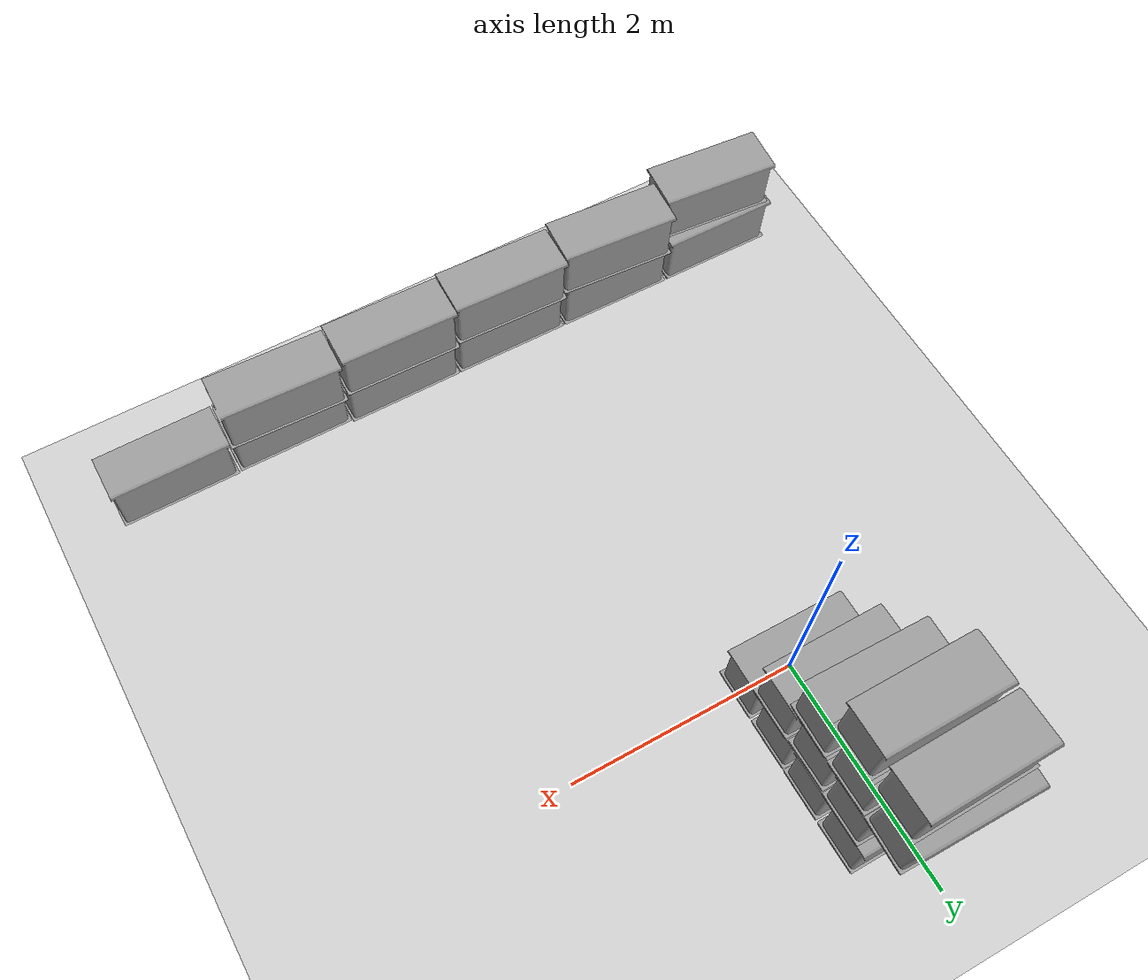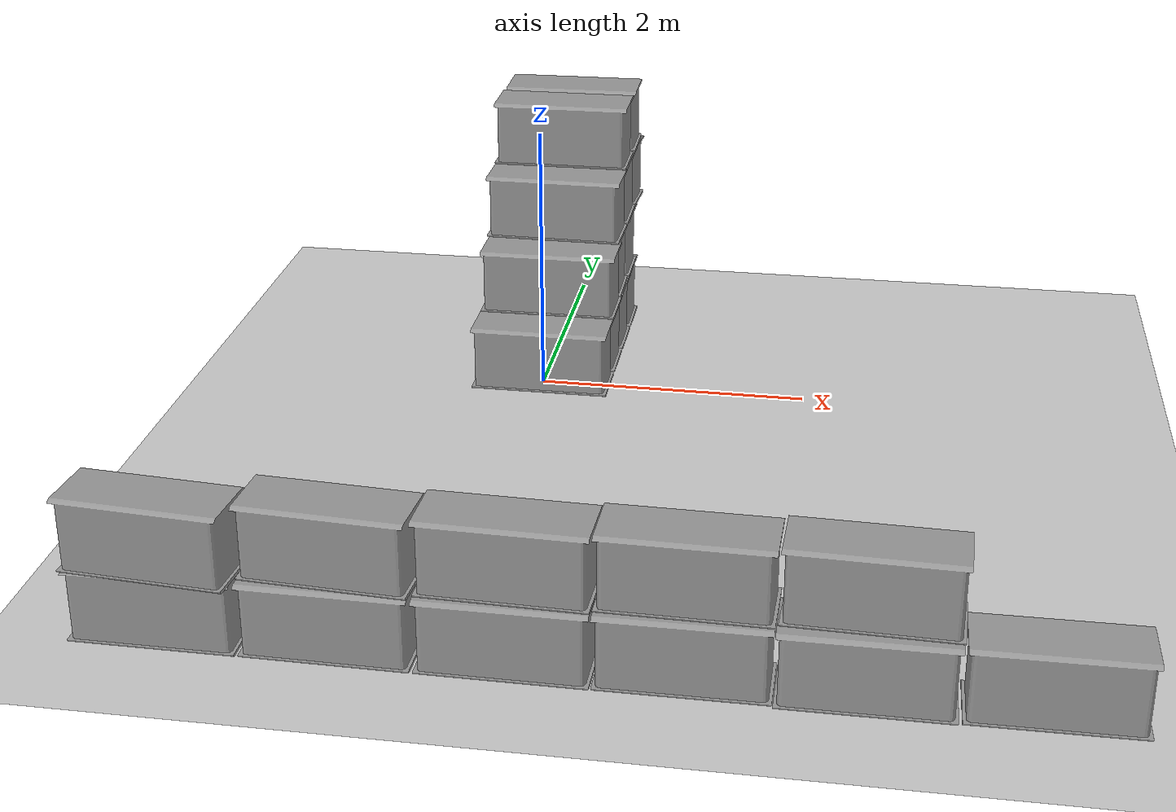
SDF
<sdf version="1.7">
 <world name="default">
  <model name="ground_plane">
   <static>1</static>
   <link name="link">
    <collision name="collision">
     <geometry><plane><normal>0 0 1</normal><size>100 100</size></plane></geometry>
     <surface><friction><ode><mu>100</mu><mu2>50</mu2></ode></friction></surface>
    </collision>
    <visual name="visual">
     <cast_shadows>0</cast_shadows>
     <geometry><plane><normal>0 0 1</normal><size>100 100</size></plane></geometry>
     <material>
      <script><uri>file://media/materials/scripts/gazebo.material</uri><name>Gazebo/Grey</name></script>
     </material>
    </visual>
   </link>
  </model>
  <model name="my_robot1">
   <link name="link_0">
    <inertial>
     <mass>1</mass>
     <inertia>
      <ixx>0.166667</ixx>
      <ixy>0</ixy>
      <ixz>0</ixz>
      <iyy>0.166667</iyy>
      <iyz>0</iyz>
      <izz>0.166667</izz>
     </inertia>
    </inertial>
    <visual name="visual">
     <geometry><mesh><uri>/home/cyun/cotton_box.stl</uri><scale>1 1 1</scale></mesh></geometry>
     <material>
      <lighting>1</lighting>
      <script><uri>file://media/materials/scripts/gazebo.material</uri><name>Gazebo/Grey</name></script>
      <shader type="pixel"><normal_map>__default__</normal_map></shader>
      <ambient>0.3 0.3 0.3 1</ambient>
      <diffuse>0.7 0.7 0.7 1</diffuse>
      <specular>0.01 0.01 0.01 1</specular>
      <emissive>0 0 0 1</emissive>
     </material>
    </visual>
    <collision name="collision">
     <geometry><mesh><uri>/home/cyun/cotton_box.stl</uri><scale>1 1 1</scale></mesh></geometry>
     <surface>
      <friction>
       <ode><mu>1</mu><mu2>1</mu2><fdir1>0 0 0</fdir1><slip1>0</slip1><slip2>0</slip2></ode>
       <torsional>
        <coefficient>1</coefficient>
        <patch_radius>0</patch_radius>
        <surface_radius>0</surface_radius>
        <use_patch_radius>1</use_patch_radius>
        <ode><slip>0</slip></ode>
       </torsional>
      </friction>
      <bounce><restitution_coefficient>0</restitution_coefficient><threshold>1e+06</threshold></bounce>
      <contact>
       <collide_without_contact>0</collide_without_contact>
       <collide_without_contact_bitmask>1</collide_without_contact_bitmask>
       <collide_bitmask>1</collide_bitmask>
       <ode>
        <soft_cfm>0</soft_cfm>
        <soft_erp>0.2</soft_erp>
        <kp>1e+13</kp>
        <kd>1</kd>
        <max_vel>0.01</max_vel>
        <min_depth>0</min_depth>
       </ode>
       <bullet>
        <split_impulse>1</split_impulse>
        <split_impulse_penetration_threshold>-0.01</split_impulse_penetration_threshold>
        <soft_cfm>0</soft_cfm>
        <soft_erp>0.2</soft_erp>
        <kp>1e+13</kp>
        <kd>1</kd>
       </bullet>
      </contact>
     </surface>
    </collision>
   </link>
   <static>0</static>
   <pose>-0.000505 -0.001454 0.01988 -5e-06 9e-06 1.56865</pose>
  </model>
  <model name="my_robot2">
   <link name="link_0">
    <inertial>
     <mass>1</mass>
     <inertia>
      <ixx>0.166667</ixx>
      <ixy>0</ixy>
      <ixz>0</ixz>
      <iyy>0.166667</iyy>
      <iyz>0</iyz>
      <izz>0.166667</izz>
     </inertia>
    </inertial>
    <visual name="visual">
     <geometry><mesh><uri>/home/cyun/cotton_box.stl</uri><scale>1 1 1</scale></mesh></geometry>
     <material>
      <lighting>1</lighting>
      <script><uri>file://media/materials/scripts/gazebo.material</uri><name>Gazebo/Grey</name></script>
      <shader type="pixel"><normal_map>__default__</normal_map></shader>
      <ambient>0.3 0.3 0.3 1</ambient>
      <diffuse>0.7 0.7 0.7 1</diffuse>
      <specular>0.01 0.01 0.01 1</specular>
      <emissive>0 0 0 1</emissive>
     </material>
    </visual>
    <collision name="collision">
     <geometry><mesh><uri>/home/cyun/cotton_box.stl</uri><scale>1 1 1</scale></mesh></geometry>
     <surface>
      <friction>
       <ode><mu>1</mu><mu2>1</mu2><fdir1>0 0 0</fdir1><slip1>0</slip1><slip2>0</slip2></ode>
       <torsional>
        <coefficient>1</coefficient>
        <patch_radius>0</patch_radius>
        <surface_radius>0</surface_radius>
        <use_patch_radius>1</use_patch_radius>
        <ode><slip>0</slip></ode>
       </torsional>
      </friction>
      <bounce><restitution_coefficient>0</restitution_coefficient><threshold>1e+06</threshold></bounce>
      <contact>
       <collide_without_contact>0</collide_without_contact>
       <collide_without_contact_bitmask>1</collide_without_contact_bitmask>
       <collide_bitmask>1</collide_bitmask>
       <ode>
        <soft_cfm>0</soft_cfm>
        <soft_erp>0.2</soft_erp>
        <kp>1e+13</kp>
        <kd>1</kd>
        <max_vel>0.01</max_vel>
        <min_depth>0</min_depth>
       </ode>
       <bullet>
        <split_impulse>1</split_impulse>
        <split_impulse_penetration_threshold>-0.01</split_impulse_penetration_threshold>
        <soft_cfm>0</soft_cfm>
        <soft_erp>0.2</soft_erp>
        <kp>1e+13</kp>
        <kd>1</kd>
       </bullet>
      </contact>
     </surface>
    </collision>
   </link>
   <static>0</static>
   <pose>-0.000211 0.452009 0.01997 -1e-05 1.1e-05 1.57701</pose>
  </model>
  <model name="my_robot3">
   <link name="link_0">
    <inertial>
     <mass>1</mass>
     <inertia>
      <ixx>0.166667</ixx>
      <ixy>0</ixy>
      <ixz>0</ixz>
      <iyy>0.166667</iyy>
      <iyz>0</iyz>
      <izz>0.166667</izz>
     </inertia>
    </inertial>
    <visual name="visual">
     <geometry><mesh><uri>/home/cyun/cotton_box.stl</uri><scale>1 1 1</scale></mesh></geometry>
     <material>
      <lighting>1</lighting>
      <script><uri>file://media/materials/scripts/gazebo.material</uri><name>Gazebo/Grey</name></script>
      <shader type="pixel"><normal_map>__default__</normal_map></shader>
      <ambient>0.3 0.3 0.3 1</ambient>
      <diffuse>0.7 0.7 0.7 1</diffuse>
      <specular>0.01 0.01 0.01 1</specular>
      <emissive>0 0 0 1</emissive>
     </material>
    </visual>
    <collision name="collision">
     <geometry><mesh><uri>/home/cyun/cotton_box.stl</uri><scale>1 1 1</scale></mesh></geometry>
     <surface>
      <friction>
       <ode><mu>1</mu><mu2>1</mu2><fdir1>0 0 0</fdir1><slip1>0</slip1><slip2>0</slip2></ode>
       <torsional>
        <coefficient>1</coefficient>
        <patch_radius>0</patch_radius>
        <surface_radius>0</surface_radius>
        <use_patch_radius>1</use_patch_radius>
        <ode><slip>0</slip></ode>
       </torsional>
      </friction>
      <bounce><restitution_coefficient>0</restitution_coefficient><threshold>1e+06</threshold></bounce>
      <contact>
       <collide_without_contact>0</collide_without_contact>
       <collide_without_contact_bitmask>1</collide_without_contact_bitmask>
       <collide_bitmask>1</collide_bitmask>
       <ode>
        <soft_cfm>0</soft_cfm>
        <soft_erp>0.2</soft_erp>
        <kp>1e+13</kp>
        <kd>1</kd>
        <max_vel>0.01</max_vel>
        <min_depth>0</min_depth>
       </ode>
       <bullet>
        <split_impulse>1</split_impulse>
        <split_impulse_penetration_threshold>-0.01</split_impulse_penetration_threshold>
        <soft_cfm>0</soft_cfm>
        <soft_erp>0.2</soft_erp>
        <kp>1e+13</kp>
        <kd>1</kd>
       </bullet>
      </contact>
     </surface>
    </collision>
   </link>
   <static>0</static>
   <pose>0.00046 0.899927 0.019881 7e-06 5.6e-05 1.57327</pose>
  </model>
  <model name="my_robot4">
   <link name="link_0">
    <inertial>
     <mass>1</mass>
     <inertia>
      <ixx>0.166667</ixx>
      <ixy>0</ixy>
      <ixz>0</ixz>
      <iyy>0.166667</iyy>
      <iyz>0</iyz>
      <izz>0.166667</izz>
     </inertia>
    </inertial>
    <visual name="visual">
     <geometry><mesh><uri>/home/cyun/cotton_box.stl</uri><scale>1 1 1</scale></mesh></geometry>
     <material>
      <lighting>1</lighting>
      <script><uri>file://media/materials/scripts/gazebo.material</uri><name>Gazebo/Grey</name></script>
      <shader type="pixel"><normal_map>__default__</normal_map></shader>
      <ambient>0.3 0.3 0.3 1</ambient>
      <diffuse>0.7 0.7 0.7 1</diffuse>
      <specular>0.01 0.01 0.01 1</specular>
      <emissive>0 0 0 1</emissive>
     </material>
    </visual>
    <collision name="collision">
     <geometry><mesh><uri>/home/cyun/cotton_box.stl</uri><scale>1 1 1</scale></mesh></geometry>
     <surface>
      <friction>
       <ode><mu>1</mu><mu2>1</mu2><fdir1>0 0 0</fdir1><slip1>0</slip1><slip2>0</slip2></ode>
       <torsional>
        <coefficient>1</coefficient>
        <patch_radius>0</patch_radius>
        <surface_radius>0</surface_radius>
        <use_patch_radius>1</use_patch_radius>
        <ode><slip>0</slip></ode>
       </torsional>
      </friction>
      <bounce><restitution_coefficient>0</restitution_coefficient><threshold>1e+06</threshold></bounce>
      <contact>
       <collide_without_contact>0</collide_without_contact>
       <collide_without_contact_bitmask>1</collide_without_contact_bitmask>
       <collide_bitmask>1</collide_bitmask>
       <ode>
        <soft_cfm>0</soft_cfm>
        <soft_erp>0.2</soft_erp>
        <kp>1e+13</kp>
        <kd>1</kd>
        <max_vel>0.01</max_vel>
        <min_depth>0</min_depth>
       </ode>
       <bullet>
        <split_impulse>1</split_impulse>
        <split_impulse_penetration_threshold>-0.01</split_impulse_penetration_threshold>
        <soft_cfm>0</soft_cfm>
        <soft_erp>0.2</soft_erp>
        <kp>1e+13</kp>
        <kd>1</kd>
       </bullet>
      </contact>
     </surface>
    </collision>
   </link>
   <static>0</static>
   <pose>-0.000647 1.35324 0.019788 1e-05 -0 1.57648</pose>
  </model>
  <model name="my_robot11">
   <link name="link_0">
    <inertial>
     <mass>1</mass>
     <inertia>
      <ixx>0.166667</ixx>
      <ixy>0</ixy>
      <ixz>0</ixz>
      <iyy>0.166667</iyy>
      <iyz>0</iyz>
      <izz>0.166667</izz>
     </inertia>
    </inertial>
    <visual name="visual">
     <geometry><mesh><uri>/home/cyun/cotton_box.stl</uri><scale>1 1 1</scale></mesh></geometry>
     <material>
      <lighting>1</lighting>
      <script><uri>file://media/materials/scripts/gazebo.material</uri><name>Gazebo/Grey</name></script>
      <shader type="pixel"><normal_map>__default__</normal_map></shader>
      <ambient>0.3 0.3 0.3 1</ambient>
      <diffuse>0.7 0.7 0.7 1</diffuse>
      <specular>0.01 0.01 0.01 1</specular>
      <emissive>0 0 0 1</emissive>
     </material>
    </visual>
    <collision name="collision">
     <geometry><mesh><uri>/home/cyun/cotton_box.stl</uri><scale>1 1 1</scale></mesh></geometry>
     <surface>
      <friction>
       <ode><mu>1</mu><mu2>1</mu2><fdir1>0 0 0</fdir1><slip1>0</slip1><slip2>0</slip2></ode>
       <torsional>
        <coefficient>1</coefficient>
        <patch_radius>0</patch_radius>
        <surface_radius>0</surface_radius>
        <use_patch_radius>1</use_patch_radius>
        <ode><slip>0</slip></ode>
       </torsional>
      </friction>
      <bounce><restitution_coefficient>0</restitution_coefficient><threshold>1e+06</threshold></bounce>
      <contact>
       <collide_without_contact>0</collide_without_contact>
       <collide_without_contact_bitmask>1</collide_without_contact_bitmask>
       <collide_bitmask>1</collide_bitmask>
       <ode>
        <soft_cfm>0</soft_cfm>
        <soft_erp>0.2</soft_erp>
        <kp>1e+13</kp>
        <kd>1</kd>
        <max_vel>0.01</max_vel>
        <min_depth>0</min_depth>
       </ode>
       <bullet>
        <split_impulse>1</split_impulse>
        <split_impulse_penetration_threshold>-0.01</split_impulse_penetration_threshold>
        <soft_cfm>0</soft_cfm>
        <soft_erp>0.2</soft_erp>
        <kp>1e+13</kp>
        <kd>1</kd>
       </bullet>
      </contact>
     </surface>
    </collision>
   </link>
   <static>0</static>
   <pose>0.007207 0.353604 0.50995 -6e-06 -7e-06 1.5736</pose>
  </model>
  <model name="my_robot12">
   <link name="link_0">
    <inertial>
     <mass>1</mass>
     <inertia>
      <ixx>0.166667</ixx>
      <ixy>0</ixy>
      <ixz>0</ixz>
      <iyy>0.166667</iyy>
      <iyz>0</iyz>
      <izz>0.166667</izz>
     </inertia>
    </inertial>
    <visual name="visual">
     <geometry><mesh><uri>/home/cyun/cotton_box.stl</uri><scale>1 1 1</scale></mesh></geometry>
     <material>
      <lighting>1</lighting>
      <script><uri>file://media/materials/scripts/gazebo.material</uri><name>Gazebo/Grey</name></script>
      <shader type="pixel"><normal_map>__default__</normal_map></shader>
      <ambient>0.3 0.3 0.3 1</ambient>
      <diffuse>0.7 0.7 0.7 1</diffuse>
      <specular>0.01 0.01 0.01 1</specular>
      <emissive>0 0 0 1</emissive>
     </material>
    </visual>
    <collision name="collision">
     <geometry><mesh><uri>/home/cyun/cotton_box.stl</uri><scale>1 1 1</scale></mesh></geometry>
     <surface>
      <friction>
       <ode><mu>1</mu><mu2>1</mu2><fdir1>0 0 0</fdir1><slip1>0</slip1><slip2>0</slip2></ode>
       <torsional>
        <coefficient>1</coefficient>
        <patch_radius>0</patch_radius>
        <surface_radius>0</surface_radius>
        <use_patch_radius>1</use_patch_radius>
        <ode><slip>0</slip></ode>
       </torsional>
      </friction>
      <bounce><restitution_coefficient>0</restitution_coefficient><threshold>1e+06</threshold></bounce>
      <contact>
       <collide_without_contact>0</collide_without_contact>
       <collide_without_contact_bitmask>1</collide_without_contact_bitmask>
       <collide_bitmask>1</collide_bitmask>
       <ode>
        <soft_cfm>0</soft_cfm>
        <soft_erp>0.2</soft_erp>
        <kp>1e+13</kp>
        <kd>1</kd>
        <max_vel>0.01</max_vel>
        <min_depth>0</min_depth>
       </ode>
       <bullet>
        <split_impulse>1</split_impulse>
        <split_impulse_penetration_threshold>-0.01</split_impulse_penetration_threshold>
        <soft_cfm>0</soft_cfm>
        <soft_erp>0.2</soft_erp>
        <kp>1e+13</kp>
        <kd>1</kd>
       </bullet>
      </contact>
     </surface>
    </collision>
   </link>
   <static>0</static>
   <pose>-0.00613 0.799123 0.509904 -5e-06 0.000201 1.58403</pose>
  </model>
  <model name="my_robot13">
   <link name="link_0">
    <inertial>
     <mass>1</mass>
     <inertia>
      <ixx>0.166667</ixx>
      <ixy>0</ixy>
      <ixz>0</ixz>
      <iyy>0.166667</iyy>
      <iyz>0</iyz>
      <izz>0.166667</izz>
     </inertia>
    </inertial>
    <visual name="visual">
     <geometry><mesh><uri>/home/cyun/cotton_box.stl</uri><scale>1 1 1</scale></mesh></geometry>
     <material>
      <lighting>1</lighting>
      <script><uri>file://media/materials/scripts/gazebo.material</uri><name>Gazebo/Grey</name></script>
      <shader type="pixel"><normal_map>__default__</normal_map></shader>
      <ambient>0.3 0.3 0.3 1</ambient>
      <diffuse>0.7 0.7 0.7 1</diffuse>
      <specular>0.01 0.01 0.01 1</specular>
      <emissive>0 0 0 1</emissive>
     </material>
    </visual>
    <collision name="collision">
     <geometry><mesh><uri>/home/cyun/cotton_box.stl</uri><scale>1 1 1</scale></mesh></geometry>
     <surface>
      <friction>
       <ode><mu>1</mu><mu2>1</mu2><fdir1>0 0 0</fdir1><slip1>0</slip1><slip2>0</slip2></ode>
       <torsional>
        <coefficient>1</coefficient>
        <patch_radius>0</patch_radius>
        <surface_radius>0</surface_radius>
        <use_patch_radius>1</use_patch_radius>
        <ode><slip>0</slip></ode>
       </torsional>
      </friction>
      <bounce><restitution_coefficient>0</restitution_coefficient><threshold>1e+06</threshold></bounce>
      <contact>
       <collide_without_contact>0</collide_without_contact>
       <collide_without_contact_bitmask>1</collide_without_contact_bitmask>
       <collide_bitmask>1</collide_bitmask>
       <ode>
        <soft_cfm>0</soft_cfm>
        <soft_erp>0.2</soft_erp>
        <kp>1e+13</kp>
        <kd>1</kd>
        <max_vel>0.01</max_vel>
        <min_depth>0</min_depth>
       </ode>
       <bullet>
        <split_impulse>1</split_impulse>
        <split_impulse_penetration_threshold>-0.01</split_impulse_penetration_threshold>
        <soft_cfm>0</soft_cfm>
        <soft_erp>0.2</soft_erp>
        <kp>1e+13</kp>
        <kd>1</kd>
       </bullet>
      </contact>
     </surface>
    </collision>
   </link>
   <static>0</static>
   <pose>0.002688 1.25131 0.509725 3.3e-05 0.000266 1.57523</pose>
  </model>
  <model name="my_robot20">
   <link name="link_0">
    <inertial>
     <mass>1</mass>
     <inertia>
      <ixx>0.166667</ixx>
      <ixy>0</ixy>
      <ixz>0</ixz>
      <iyy>0.166667</iyy>
      <iyz>0</iyz>
      <izz>0.166667</izz>
     </inertia>
    </inertial>
    <visual name="visual">
     <geometry><mesh><uri>/home/cyun/cotton_box.stl</uri><scale>1 1 1</scale></mesh></geometry>
     <material>
      <lighting>1</lighting>
      <script><uri>file://media/materials/scripts/gazebo.material</uri><name>Gazebo/Grey</name></script>
      <shader type="pixel"><normal_map>__default__</normal_map></shader>
      <ambient>0.3 0.3 0.3 1</ambient>
      <diffuse>0.7 0.7 0.7 1</diffuse>
      <specular>0.01 0.01 0.01 1</specular>
      <emissive>0 0 0 1</emissive>
     </material>
    </visual>
    <collision name="collision">
     <geometry><mesh><uri>/home/cyun/cotton_box.stl</uri><scale>1 1 1</scale></mesh></geometry>
     <surface>
      <friction>
       <ode><mu>1</mu><mu2>1</mu2><fdir1>0 0 0</fdir1><slip1>0</slip1><slip2>0</slip2></ode>
       <torsional>
        <coefficient>1</coefficient>
        <patch_radius>0</patch_radius>
        <surface_radius>0</surface_radius>
        <use_patch_radius>1</use_patch_radius>
        <ode><slip>0</slip></ode>
       </torsional>
      </friction>
      <bounce><restitution_coefficient>0</restitution_coefficient><threshold>1e+06</threshold></bounce>
      <contact>
       <collide_without_contact>0</collide_without_contact>
       <collide_without_contact_bitmask>1</collide_without_contact_bitmask>
       <collide_bitmask>1</collide_bitmask>
       <ode>
        <soft_cfm>0</soft_cfm>
        <soft_erp>0.2</soft_erp>
        <kp>1e+13</kp>
        <kd>1</kd>
        <max_vel>0.01</max_vel>
        <min_depth>0</min_depth>
       </ode>
       <bullet>
        <split_impulse>1</split_impulse>
        <split_impulse_penetration_threshold>-0.01</split_impulse_penetration_threshold>
        <soft_cfm>0</soft_cfm>
        <soft_erp>0.2</soft_erp>
        <kp>1e+13</kp>
        <kd>1</kd>
       </bullet>
      </contact>
     </surface>
    </collision>
   </link>
   <static>0</static>
   <pose>-0.001464 0.691061 0.999902 -1.2e-05 0.00019 1.55507</pose>
  </model>
  <model name="my_robot21">
   <link name="link_0">
    <inertial>
     <mass>1</mass>
     <inertia>
      <ixx>0.166667</ixx>
      <ixy>0</ixy>
      <ixz>0</ixz>
      <iyy>0.166667</iyy>
      <iyz>0</iyz>
      <izz>0.166667</izz>
     </inertia>
    </inertial>
    <visual name="visual">
     <geometry><mesh><uri>/home/cyun/cotton_box.stl</uri><scale>1 1 1</scale></mesh></geometry>
     <material>
      <lighting>1</lighting>
      <script><uri>file://media/materials/scripts/gazebo.material</uri><name>Gazebo/Grey</name></script>
      <shader type="pixel"><normal_map>__default__</normal_map></shader>
      <ambient>0.3 0.3 0.3 1</ambient>
      <diffuse>0.7 0.7 0.7 1</diffuse>
      <specular>0.01 0.01 0.01 1</specular>
      <emissive>0 0 0 1</emissive>
     </material>
    </visual>
    <collision name="collision">
     <geometry><mesh><uri>/home/cyun/cotton_box.stl</uri><scale>1 1 1</scale></mesh></geometry>
     <surface>
      <friction>
       <ode><mu>1</mu><mu2>1</mu2><fdir1>0 0 0</fdir1><slip1>0</slip1><slip2>0</slip2></ode>
       <torsional>
        <coefficient>1</coefficient>
        <patch_radius>0</patch_radius>
        <surface_radius>0</surface_radius>
        <use_patch_radius>1</use_patch_radius>
        <ode><slip>0</slip></ode>
       </torsional>
      </friction>
      <bounce><restitution_coefficient>0</restitution_coefficient><threshold>1e+06</threshold></bounce>
      <contact>
       <collide_without_contact>0</collide_without_contact>
       <collide_without_contact_bitmask>1</collide_without_contact_bitmask>
       <collide_bitmask>1</collide_bitmask>
       <ode>
        <soft_cfm>0</soft_cfm>
        <soft_erp>0.2</soft_erp>
        <kp>1e+13</kp>
        <kd>1</kd>
        <max_vel>0.01</max_vel>
        <min_depth>0</min_depth>
       </ode>
       <bullet>
        <split_impulse>1</split_impulse>
        <split_impulse_penetration_threshold>-0.01</split_impulse_penetration_threshold>
        <soft_cfm>0</soft_cfm>
        <soft_erp>0.2</soft_erp>
        <kp>1e+13</kp>
        <kd>1</kd>
       </bullet>
      </contact>
     </surface>
    </collision>
   </link>
   <static>0</static>
   <pose>0.002045 1.14365 0.999802 -6e-06 0.00029 1.57929</pose>
  </model>
  <model name="my_robot22">
   <link name="link_0">
    <inertial>
     <mass>1</mass>
     <inertia>
      <ixx>0.166667</ixx>
      <ixy>0</ixy>
      <ixz>0</ixz>
      <iyy>0.166667</iyy>
      <iyz>0</iyz>
      <izz>0.166667</izz>
     </inertia>
    </inertial>
    <visual name="visual">
     <geometry><mesh><uri>/home/cyun/cotton_box.stl</uri><scale>1 1 1</scale></mesh></geometry>
     <material>
      <lighting>1</lighting>
      <script><uri>file://media/materials/scripts/gazebo.material</uri><name>Gazebo/Grey</name></script>
      <shader type="pixel"><normal_map>__default__</normal_map></shader>
      <ambient>0.3 0.3 0.3 1</ambient>
      <diffuse>0.7 0.7 0.7 1</diffuse>
      <specular>0.01 0.01 0.01 1</specular>
      <emissive>0 0 0 1</emissive>
     </material>
    </visual>
    <collision name="collision">
     <geometry><mesh><uri>/home/cyun/cotton_box.stl</uri><scale>1 1 1</scale></mesh></geometry>
     <surface>
      <friction>
       <ode><mu>1</mu><mu2>1</mu2><fdir1>0 0 0</fdir1><slip1>0</slip1><slip2>0</slip2></ode>
       <torsional>
        <coefficient>1</coefficient>
        <patch_radius>0</patch_radius>
        <surface_radius>0</surface_radius>
        <use_patch_radius>1</use_patch_radius>
        <ode><slip>0</slip></ode>
       </torsional>
      </friction>
      <bounce><restitution_coefficient>0</restitution_coefficient><threshold>1e+06</threshold></bounce>
      <contact>
       <collide_without_contact>0</collide_without_contact>
       <collide_without_contact_bitmask>1</collide_without_contact_bitmask>
       <collide_bitmask>1</collide_bitmask>
       <ode>
        <soft_cfm>0</soft_cfm>
        <soft_erp>0.2</soft_erp>
        <kp>1e+13</kp>
        <kd>1</kd>
        <max_vel>0.01</max_vel>
        <min_depth>0</min_depth>
       </ode>
       <bullet>
        <split_impulse>1</split_impulse>
        <split_impulse_penetration_threshold>-0.01</split_impulse_penetration_threshold>
        <soft_cfm>0</soft_cfm>
        <soft_erp>0.2</soft_erp>
        <kp>1e+13</kp>
        <kd>1</kd>
       </bullet>
      </contact>
     </surface>
    </collision>
   </link>
   <static>0</static>
   <pose>0.006243 1.5932 0.989579 -0.001307 0.06544 1.56397</pose>
  </model>
  <model name="my_robot28">
   <link name="link_0">
    <inertial>
     <mass>1</mass>
     <inertia>
      <ixx>0.166667</ixx>
      <ixy>0</ixy>
      <ixz>0</ixz>
      <iyy>0.166667</iyy>
      <iyz>0</iyz>
      <izz>0.166667</izz>
     </inertia>
    </inertial>
    <visual name="visual">
     <geometry><mesh><uri>/home/cyun/cotton_box.stl</uri><scale>1 1 1</scale></mesh></geometry>
     <material>
      <lighting>1</lighting>
      <script><uri>file://media/materials/scripts/gazebo.material</uri><name>Gazebo/Grey</name></script>
      <shader type="pixel"><normal_map>__default__</normal_map></shader>
      <ambient>0.3 0.3 0.3 1</ambient>
      <diffuse>0.7 0.7 0.7 1</diffuse>
      <specular>0.01 0.01 0.01 1</specular>
      <emissive>0 0 0 1</emissive>
     </material>
    </visual>
    <collision name="collision">
     <geometry><mesh><uri>/home/cyun/cotton_box.stl</uri><scale>1 1 1</scale></mesh></geometry>
     <surface>
      <friction>
       <ode><mu>1</mu><mu2>1</mu2><fdir1>0 0 0</fdir1><slip1>0</slip1><slip2>0</slip2></ode>
       <torsional>
        <coefficient>1</coefficient>
        <patch_radius>0</patch_radius>
        <surface_radius>0</surface_radius>
        <use_patch_radius>1</use_patch_radius>
        <ode><slip>0</slip></ode>
       </torsional>
      </friction>
      <bounce><restitution_coefficient>0</restitution_coefficient><threshold>1e+06</threshold></bounce>
      <contact>
       <collide_without_contact>0</collide_without_contact>
       <collide_without_contact_bitmask>1</collide_without_contact_bitmask>
       <collide_bitmask>1</collide_bitmask>
       <ode>
        <soft_cfm>0</soft_cfm>
        <soft_erp>0.2</soft_erp>
        <kp>1e+13</kp>
        <kd>1</kd>
        <max_vel>0.01</max_vel>
        <min_depth>0</min_depth>
       </ode>
       <bullet>
        <split_impulse>1</split_impulse>
        <split_impulse_penetration_threshold>-0.01</split_impulse_penetration_threshold>
        <soft_cfm>0</soft_cfm>
        <soft_erp>0.2</soft_erp>
        <kp>1e+13</kp>
        <kd>1</kd>
       </bullet>
      </contact>
     </surface>
    </collision>
   </link>
   <static>0</static>
   <pose>-0.000643 1.02744 1.48982 -6e-06 0.000298 1.57461</pose>
  </model>
  <model name="my_robot29">
   <link name="link_0">
    <inertial>
     <mass>1</mass>
     <inertia>
      <ixx>0.166667</ixx>
      <ixy>0</ixy>
      <ixz>0</ixz>
      <iyy>0.166667</iyy>
      <iyz>0</iyz>
      <izz>0.166667</izz>
     </inertia>
    </inertial>
    <visual name="visual">
     <geometry><mesh><uri>/home/cyun/cotton_box.stl</uri><scale>1 1 1</scale></mesh></geometry>
     <material>
      <lighting>1</lighting>
      <script><uri>file://media/materials/scripts/gazebo.material</uri><name>Gazebo/Grey</name></script>
      <shader type="pixel"><normal_map>__default__</normal_map></shader>
      <ambient>0.3 0.3 0.3 1</ambient>
      <diffuse>0.7 0.7 0.7 1</diffuse>
      <specular>0.01 0.01 0.01 1</specular>
      <emissive>0 0 0 1</emissive>
     </material>
    </visual>
    <collision name="collision">
     <geometry><mesh><uri>/home/cyun/cotton_box.stl</uri><scale>1 1 1</scale></mesh></geometry>
     <surface>
      <friction>
       <ode><mu>1</mu><mu2>1</mu2><fdir1>0 0 0</fdir1><slip1>0</slip1><slip2>0</slip2></ode>
       <torsional>
        <coefficient>1</coefficient>
        <patch_radius>0</patch_radius>
        <surface_radius>0</surface_radius>
        <use_patch_radius>1</use_patch_radius>
        <ode><slip>0</slip></ode>
       </torsional>
      </friction>
      <bounce><restitution_coefficient>0</restitution_coefficient><threshold>1e+06</threshold></bounce>
      <contact>
       <collide_without_contact>0</collide_without_contact>
       <collide_without_contact_bitmask>1</collide_without_contact_bitmask>
       <collide_bitmask>1</collide_bitmask>
       <ode>
        <soft_cfm>0</soft_cfm>
        <soft_erp>0.2</soft_erp>
        <kp>1e+13</kp>
        <kd>1</kd>
        <max_vel>0.01</max_vel>
        <min_depth>0</min_depth>
       </ode>
       <bullet>
        <split_impulse>1</split_impulse>
        <split_impulse_penetration_threshold>-0.01</split_impulse_penetration_threshold>
        <soft_cfm>0</soft_cfm>
        <soft_erp>0.2</soft_erp>
        <kp>1e+13</kp>
        <kd>1</kd>
       </bullet>
      </contact>
     </surface>
    </collision>
   </link>
   <static>0</static>
   <pose>0.00535 1.49239 1.49173 -0.000163 -0.000101 1.58662</pose>
  </model>
  <model name="my_robot1_clone">
   <link name="link_0">
    <inertial>
     <mass>1</mass>
     <inertia>
      <ixx>0.166667</ixx>
      <ixy>0</ixy>
      <ixz>0</ixz>
      <iyy>0.166667</iyy>
      <iyz>0</iyz>
      <izz>0.166667</izz>
     </inertia>
    </inertial>
    <visual name="visual">
     <geometry><mesh><uri>/home/cyun/cotton_box.stl</uri><scale>1 1 1</scale></mesh></geometry>
     <material>
      <lighting>1</lighting>
      <script><uri>file://media/materials/scripts/gazebo.material</uri><name>Gazebo/Grey</name></script>
      <shader type="pixel"><normal_map>__default__</normal_map></shader>
      <ambient>0.3 0.3 0.3 1</ambient>
      <diffuse>0.7 0.7 0.7 1</diffuse>
      <specular>0.01 0.01 0.01 1</specular>
      <emissive>0 0 0 1</emissive>
     </material>
    </visual>
    <collision name="collision">
     <geometry><mesh><uri>/home/cyun/cotton_box.stl</uri><scale>1 1 1</scale></mesh></geometry>
     <surface>
      <friction>
       <ode><mu>1</mu><mu2>1</mu2><fdir1>0 0 0</fdir1><slip1>0</slip1><slip2>0</slip2></ode>
       <torsional>
        <coefficient>1</coefficient>
        <patch_radius>0</patch_radius>
        <surface_radius>0</surface_radius>
        <use_patch_radius>1</use_patch_radius>
        <ode><slip>0</slip></ode>
       </torsional>
      </friction>
      <bounce><restitution_coefficient>0</restitution_coefficient><threshold>1e+06</threshold></bounce>
      <contact>
       <collide_without_contact>0</collide_without_contact>
       <collide_without_contact_bitmask>1</collide_without_contact_bitmask>
       <collide_bitmask>1</collide_bitmask>
       <ode>
        <soft_cfm>0</soft_cfm>
        <soft_erp>0.2</soft_erp>
        <kp>1e+13</kp>
        <kd>1</kd>
        <max_vel>0.01</max_vel>
        <min_depth>0</min_depth>
       </ode>
       <bullet>
        <split_impulse>1</split_impulse>
        <split_impulse_penetration_threshold>-0.01</split_impulse_penetration_threshold>
        <soft_cfm>0</soft_cfm>
        <soft_erp>0.2</soft_erp>
        <kp>1e+13</kp>
        <kd>1</kd>
       </bullet>
      </contact>
     </surface>
    </collision>
   </link>
   <static>0</static>
   <pose>-1.63478 -3.87764 0.019998 0 8e-06 1.56441</pose>
  </model>
  <model name="my_robot1_clone_0">
   <link name="link_0">
    <inertial>
     <mass>1</mass>
     <inertia>
      <ixx>0.166667</ixx>
      <ixy>0</ixy>
      <ixz>0</ixz>
      <iyy>0.166667</iyy>
      <iyz>0</iyz>
      <izz>0.166667</izz>
     </inertia>
    </inertial>
    <visual name="visual">
     <geometry><mesh><uri>/home/cyun/cotton_box.stl</uri><scale>1 1 1</scale></mesh></geometry>
     <material>
      <lighting>1</lighting>
      <script><uri>file://media/materials/scripts/gazebo.material</uri><name>Gazebo/Grey</name></script>
      <shader type="pixel"><normal_map>__default__</normal_map></shader>
      <ambient>0.3 0.3 0.3 1</ambient>
      <diffuse>0.7 0.7 0.7 1</diffuse>
      <specular>0.01 0.01 0.01 1</specular>
      <emissive>0 0 0 1</emissive>
     </material>
    </visual>
    <collision name="collision">
     <geometry><mesh><uri>/home/cyun/cotton_box.stl</uri><scale>1 1 1</scale></mesh></geometry>
     <surface>
      <friction>
       <ode><mu>1</mu><mu2>1</mu2><fdir1>0 0 0</fdir1><slip1>0</slip1><slip2>0</slip2></ode>
       <torsional>
        <coefficient>1</coefficient>
        <patch_radius>0</patch_radius>
        <surface_radius>0</surface_radius>
        <use_patch_radius>1</use_patch_radius>
        <ode><slip>0</slip></ode>
       </torsional>
      </friction>
      <bounce><restitution_coefficient>0</restitution_coefficient><threshold>1e+06</threshold></bounce>
      <contact>
       <collide_without_contact>0</collide_without_contact>
       <collide_without_contact_bitmask>1</collide_without_contact_bitmask>
       <collide_bitmask>1</collide_bitmask>
       <ode>
        <soft_cfm>0</soft_cfm>
        <soft_erp>0.2</soft_erp>
        <kp>1e+13</kp>
        <kd>1</kd>
        <max_vel>0.01</max_vel>
        <min_depth>0</min_depth>
       </ode>
       <bullet>
        <split_impulse>1</split_impulse>
        <split_impulse_penetration_threshold>-0.01</split_impulse_penetration_threshold>
        <soft_cfm>0</soft_cfm>
        <soft_erp>0.2</soft_erp>
        <kp>1e+13</kp>
        <kd>1</kd>
       </bullet>
      </contact>
     </surface>
    </collision>
   </link>
   <static>0</static>
   <pose>-0.57 -3.88456 0.02 0 -0 1.55884</pose>
  </model>
  <model name="my_robot1_clone_1">
   <link name="link_0">
    <inertial>
     <mass>1</mass>
     <inertia>
      <ixx>0.166667</ixx>
      <ixy>0</ixy>
      <ixz>0</ixz>
      <iyy>0.166667</iyy>
      <iyz>0</iyz>
      <izz>0.166667</izz>
     </inertia>
    </inertial>
    <visual name="visual">
     <geometry><mesh><uri>/home/cyun/cotton_box.stl</uri><scale>1 1 1</scale></mesh></geometry>
     <material>
      <lighting>1</lighting>
      <script><uri>file://media/materials/scripts/gazebo.material</uri><name>Gazebo/Grey</name></script>
      <shader type="pixel"><normal_map>__default__</normal_map></shader>
      <ambient>0.3 0.3 0.3 1</ambient>
      <diffuse>0.7 0.7 0.7 1</diffuse>
      <specular>0.01 0.01 0.01 1</specular>
      <emissive>0 0 0 1</emissive>
     </material>
    </visual>
    <collision name="collision">
     <geometry><mesh><uri>/home/cyun/cotton_box.stl</uri><scale>1 1 1</scale></mesh></geometry>
     <surface>
      <friction>
       <ode><mu>1</mu><mu2>1</mu2><fdir1>0 0 0</fdir1><slip1>0</slip1><slip2>0</slip2></ode>
       <torsional>
        <coefficient>1</coefficient>
        <patch_radius>0</patch_radius>
        <surface_radius>0</surface_radius>
        <use_patch_radius>1</use_patch_radius>
        <ode><slip>0</slip></ode>
       </torsional>
      </friction>
      <bounce><restitution_coefficient>0</restitution_coefficient><threshold>1e+06</threshold></bounce>
      <contact>
       <collide_without_contact>0</collide_without_contact>
       <collide_without_contact_bitmask>1</collide_without_contact_bitmask>
       <collide_bitmask>1</collide_bitmask>
       <ode>
        <soft_cfm>0</soft_cfm>
        <soft_erp>0.2</soft_erp>
        <kp>1e+13</kp>
        <kd>1</kd>
        <max_vel>0.01</max_vel>
        <min_depth>0</min_depth>
       </ode>
       <bullet>
        <split_impulse>1</split_impulse>
        <split_impulse_penetration_threshold>-0.01</split_impulse_penetration_threshold>
        <soft_cfm>0</soft_cfm>
        <soft_erp>0.2</soft_erp>
        <kp>1e+13</kp>
        <kd>1</kd>
       </bullet>
      </contact>
     </surface>
    </collision>
   </link>
   <static>0</static>
   <pose>0.491904 -3.89415 0.019972 1.5e-05 -3e-06 1.56393</pose>
  </model>
  <model name="my_robot1_clone_2">
   <link name="link_0">
    <inertial>
     <mass>1</mass>
     <inertia>
      <ixx>0.166667</ixx>
      <ixy>0</ixy>
      <ixz>0</ixz>
      <iyy>0.166667</iyy>
      <iyz>0</iyz>
      <izz>0.166667</izz>
     </inertia>
    </inertial>
    <visual name="visual">
     <geometry><mesh><uri>/home/cyun/cotton_box.stl</uri><scale>1 1 1</scale></mesh></geometry>
     <material>
      <lighting>1</lighting>
      <script><uri>file://media/materials/scripts/gazebo.material</uri><name>Gazebo/Grey</name></script>
      <shader type="pixel"><normal_map>__default__</normal_map></shader>
      <ambient>0.3 0.3 0.3 1</ambient>
      <diffuse>0.7 0.7 0.7 1</diffuse>
      <specular>0.01 0.01 0.01 1</specular>
      <emissive>0 0 0 1</emissive>
     </material>
    </visual>
    <collision name="collision">
     <geometry><mesh><uri>/home/cyun/cotton_box.stl</uri><scale>1 1 1</scale></mesh></geometry>
     <surface>
      <friction>
       <ode><mu>1</mu><mu2>1</mu2><fdir1>0 0 0</fdir1><slip1>0</slip1><slip2>0</slip2></ode>
       <torsional>
        <coefficient>1</coefficient>
        <patch_radius>0</patch_radius>
        <surface_radius>0</surface_radius>
        <use_patch_radius>1</use_patch_radius>
        <ode><slip>0</slip></ode>
       </torsional>
      </friction>
      <bounce><restitution_coefficient>0</restitution_coefficient><threshold>1e+06</threshold></bounce>
      <contact>
       <collide_without_contact>0</collide_without_contact>
       <collide_without_contact_bitmask>1</collide_without_contact_bitmask>
       <collide_bitmask>1</collide_bitmask>
       <ode>
        <soft_cfm>0</soft_cfm>
        <soft_erp>0.2</soft_erp>
        <kp>1e+13</kp>
        <kd>1</kd>
        <max_vel>0.01</max_vel>
        <min_depth>0</min_depth>
       </ode>
       <bullet>
        <split_impulse>1</split_impulse>
        <split_impulse_penetration_threshold>-0.01</split_impulse_penetration_threshold>
        <soft_cfm>0</soft_cfm>
        <soft_erp>0.2</soft_erp>
        <kp>1e+13</kp>
        <kd>1</kd>
       </bullet>
      </contact>
     </surface>
    </collision>
   </link>
   <static>0</static>
   <pose>1.5425 -3.89455 0.02 0 1e-06 1.57173</pose>
  </model>
  <model name="my_robot1_clone_3">
   <link name="link_0">
    <inertial>
     <mass>1</mass>
     <inertia>
      <ixx>0.166667</ixx>
      <ixy>0</ixy>
      <ixz>0</ixz>
      <iyy>0.166667</iyy>
      <iyz>0</iyz>
      <izz>0.166667</izz>
     </inertia>
    </inertial>
    <visual name="visual">
     <geometry><mesh><uri>/home/cyun/cotton_box.stl</uri><scale>1 1 1</scale></mesh></geometry>
     <material>
      <lighting>1</lighting>
      <script><uri>file://media/materials/scripts/gazebo.material</uri><name>Gazebo/Grey</name></script>
      <shader type="pixel"><normal_map>__default__</normal_map></shader>
      <ambient>0.3 0.3 0.3 1</ambient>
      <diffuse>0.7 0.7 0.7 1</diffuse>
      <specular>0.01 0.01 0.01 1</specular>
      <emissive>0 0 0 1</emissive>
     </material>
    </visual>
    <collision name="collision">
     <geometry><mesh><uri>/home/cyun/cotton_box.stl</uri><scale>1 1 1</scale></mesh></geometry>
     <surface>
      <friction>
       <ode><mu>1</mu><mu2>1</mu2><fdir1>0 0 0</fdir1><slip1>0</slip1><slip2>0</slip2></ode>
       <torsional>
        <coefficient>1</coefficient>
        <patch_radius>0</patch_radius>
        <surface_radius>0</surface_radius>
        <use_patch_radius>1</use_patch_radius>
        <ode><slip>0</slip></ode>
       </torsional>
      </friction>
      <bounce><restitution_coefficient>0</restitution_coefficient><threshold>1e+06</threshold></bounce>
      <contact>
       <collide_without_contact>0</collide_without_contact>
       <collide_without_contact_bitmask>1</collide_without_contact_bitmask>
       <collide_bitmask>1</collide_bitmask>
       <ode>
        <soft_cfm>0</soft_cfm>
        <soft_erp>0.2</soft_erp>
        <kp>1e+13</kp>
        <kd>1</kd>
        <max_vel>0.01</max_vel>
        <min_depth>0</min_depth>
       </ode>
       <bullet>
        <split_impulse>1</split_impulse>
        <split_impulse_penetration_threshold>-0.01</split_impulse_penetration_threshold>
        <soft_cfm>0</soft_cfm>
        <soft_erp>0.2</soft_erp>
        <kp>1e+13</kp>
        <kd>1</kd>
       </bullet>
      </contact>
     </surface>
    </collision>
   </link>
   <static>0</static>
   <pose>2.58869 -3.91515 0.019953 4e-06 5e-06 1.57124</pose>
  </model>
  <model name="my_robot1_clone_4">
   <link name="link_0">
    <inertial>
     <mass>1</mass>
     <inertia>
      <ixx>0.166667</ixx>
      <ixy>0</ixy>
      <ixz>0</ixz>
      <iyy>0.166667</iyy>
      <iyz>0</iyz>
      <izz>0.166667</izz>
     </inertia>
    </inertial>
    <visual name="visual">
     <geometry><mesh><uri>/home/cyun/cotton_box.stl</uri><scale>1 1 1</scale></mesh></geometry>
     <material>
      <lighting>1</lighting>
      <script><uri>file://media/materials/scripts/gazebo.material</uri><name>Gazebo/Grey</name></script>
      <shader type="pixel"><normal_map>__default__</normal_map></shader>
      <ambient>0.3 0.3 0.3 1</ambient>
      <diffuse>0.7 0.7 0.7 1</diffuse>
      <specular>0.01 0.01 0.01 1</specular>
      <emissive>0 0 0 1</emissive>
     </material>
    </visual>
    <collision name="collision">
     <geometry><mesh><uri>/home/cyun/cotton_box.stl</uri><scale>1 1 1</scale></mesh></geometry>
     <surface>
      <friction>
       <ode><mu>1</mu><mu2>1</mu2><fdir1>0 0 0</fdir1><slip1>0</slip1><slip2>0</slip2></ode>
       <torsional>
        <coefficient>1</coefficient>
        <patch_radius>0</patch_radius>
        <surface_radius>0</surface_radius>
        <use_patch_radius>1</use_patch_radius>
        <ode><slip>0</slip></ode>
       </torsional>
      </friction>
      <bounce><restitution_coefficient>0</restitution_coefficient><threshold>1e+06</threshold></bounce>
      <contact>
       <collide_without_contact>0</collide_without_contact>
       <collide_without_contact_bitmask>1</collide_without_contact_bitmask>
       <collide_bitmask>1</collide_bitmask>
       <ode>
        <soft_cfm>0</soft_cfm>
        <soft_erp>0.2</soft_erp>
        <kp>1e+13</kp>
        <kd>1</kd>
        <max_vel>0.01</max_vel>
        <min_depth>0</min_depth>
       </ode>
       <bullet>
        <split_impulse>1</split_impulse>
        <split_impulse_penetration_threshold>-0.01</split_impulse_penetration_threshold>
        <soft_cfm>0</soft_cfm>
        <soft_erp>0.2</soft_erp>
        <kp>1e+13</kp>
        <kd>1</kd>
       </bullet>
      </contact>
     </surface>
    </collision>
   </link>
   <static>0</static>
   <pose>3.6483 -3.90259 0.02 0 -0 1.57603</pose>
  </model>
  <model name="my_robot1_clone_4_clone_clone">
   <link name="link_0">
    <inertial>
     <mass>1</mass>
     <inertia>
      <ixx>0.166667</ixx>
      <ixy>0</ixy>
      <ixz>0</ixz>
      <iyy>0.166667</iyy>
      <iyz>0</iyz>
      <izz>0.166667</izz>
     </inertia>
    </inertial>
    <visual name="visual">
     <geometry><mesh><uri>/home/cyun/cotton_box.stl</uri><scale>1 1 1</scale></mesh></geometry>
     <material>
      <lighting>1</lighting>
      <script><uri>file://media/materials/scripts/gazebo.material</uri><name>Gazebo/Grey</name></script>
      <shader type="pixel"><normal_map>__default__</normal_map></shader>
      <ambient>0.3 0.3 0.3 1</ambient>
      <diffuse>0.7 0.7 0.7 1</diffuse>
      <specular>0.01 0.01 0.01 1</specular>
      <emissive>0 0 0 1</emissive>
     </material>
    </visual>
    <collision name="collision">
     <geometry><mesh><uri>/home/cyun/cotton_box.stl</uri><scale>1 1 1</scale></mesh></geometry>
     <surface>
      <friction>
       <ode><mu>1</mu><mu2>1</mu2><fdir1>0 0 0</fdir1><slip1>0</slip1><slip2>0</slip2></ode>
       <torsional>
        <coefficient>1</coefficient>
        <patch_radius>0</patch_radius>
        <surface_radius>0</surface_radius>
        <use_patch_radius>1</use_patch_radius>
        <ode><slip>0</slip></ode>
       </torsional>
      </friction>
      <bounce><restitution_coefficient>0</restitution_coefficient><threshold>1e+06</threshold></bounce>
      <contact>
       <collide_without_contact>0</collide_without_contact>
       <collide_without_contact_bitmask>1</collide_without_contact_bitmask>
       <collide_bitmask>1</collide_bitmask>
       <ode>
        <soft_cfm>0</soft_cfm>
        <soft_erp>0.2</soft_erp>
        <kp>1e+13</kp>
        <kd>1</kd>
        <max_vel>0.01</max_vel>
        <min_depth>0</min_depth>
       </ode>
       <bullet>
        <split_impulse>1</split_impulse>
        <split_impulse_penetration_threshold>-0.01</split_impulse_penetration_threshold>
        <soft_cfm>0</soft_cfm>
        <soft_erp>0.2</soft_erp>
        <kp>1e+13</kp>
        <kd>1</kd>
       </bullet>
      </contact>
     </surface>
    </collision>
   </link>
   <static>0</static>
   <pose>2.60289 -3.83844 0.509953 5e-06 4e-06 1.53854</pose>
  </model>
  <model name="my_robot1_clone_4_clone_clone_0">
   <link name="link_0">
    <inertial>
     <mass>1</mass>
     <inertia>
      <ixx>0.166667</ixx>
      <ixy>0</ixy>
      <ixz>0</ixz>
      <iyy>0.166667</iyy>
      <iyz>0</iyz>
      <izz>0.166667</izz>
     </inertia>
    </inertial>
    <visual name="visual">
     <geometry><mesh><uri>/home/cyun/cotton_box.stl</uri><scale>1 1 1</scale></mesh></geometry>
     <material>
      <lighting>1</lighting>
      <script><uri>file://media/materials/scripts/gazebo.material</uri><name>Gazebo/Grey</name></script>
      <shader type="pixel"><normal_map>__default__</normal_map></shader>
      <ambient>0.3 0.3 0.3 1</ambient>
      <diffuse>0.7 0.7 0.7 1</diffuse>
      <specular>0.01 0.01 0.01 1</specular>
      <emissive>0 0 0 1</emissive>
     </material>
    </visual>
    <collision name="collision">
     <geometry><mesh><uri>/home/cyun/cotton_box.stl</uri><scale>1 1 1</scale></mesh></geometry>
     <surface>
      <friction>
       <ode><mu>1</mu><mu2>1</mu2><fdir1>0 0 0</fdir1><slip1>0</slip1><slip2>0</slip2></ode>
       <torsional>
        <coefficient>1</coefficient>
        <patch_radius>0</patch_radius>
        <surface_radius>0</surface_radius>
        <use_patch_radius>1</use_patch_radius>
        <ode><slip>0</slip></ode>
       </torsional>
      </friction>
      <bounce><restitution_coefficient>0</restitution_coefficient><threshold>1e+06</threshold></bounce>
      <contact>
       <collide_without_contact>0</collide_without_contact>
       <collide_without_contact_bitmask>1</collide_without_contact_bitmask>
       <collide_bitmask>1</collide_bitmask>
       <ode>
        <soft_cfm>0</soft_cfm>
        <soft_erp>0.2</soft_erp>
        <kp>1e+13</kp>
        <kd>1</kd>
        <max_vel>0.01</max_vel>
        <min_depth>0</min_depth>
       </ode>
       <bullet>
        <split_impulse>1</split_impulse>
        <split_impulse_penetration_threshold>-0.01</split_impulse_penetration_threshold>
        <soft_cfm>0</soft_cfm>
        <soft_erp>0.2</soft_erp>
        <kp>1e+13</kp>
        <kd>1</kd>
       </bullet>
      </contact>
     </surface>
    </collision>
   </link>
   <static>0</static>
   <pose>1.54624 -3.84893 0.509985 -2.7e-05 -1.2e-05 1.55253</pose>
  </model>
  <model name="my_robot1_clone_4_clone_clone_1">
   <link name="link_0">
    <inertial>
     <mass>1</mass>
     <inertia>
      <ixx>0.166667</ixx>
      <ixy>0</ixy>
      <ixz>0</ixz>
      <iyy>0.166667</iyy>
      <iyz>0</iyz>
      <izz>0.166667</izz>
     </inertia>
    </inertial>
    <visual name="visual">
     <geometry><mesh><uri>/home/cyun/cotton_box.stl</uri><scale>1 1 1</scale></mesh></geometry>
     <material>
      <lighting>1</lighting>
      <script><uri>file://media/materials/scripts/gazebo.material</uri><name>Gazebo/Grey</name></script>
      <shader type="pixel"><normal_map>__default__</normal_map></shader>
      <ambient>0.3 0.3 0.3 1</ambient>
      <diffuse>0.7 0.7 0.7 1</diffuse>
      <specular>0.01 0.01 0.01 1</specular>
      <emissive>0 0 0 1</emissive>
     </material>
    </visual>
    <collision name="collision">
     <geometry><mesh><uri>/home/cyun/cotton_box.stl</uri><scale>1 1 1</scale></mesh></geometry>
     <surface>
      <friction>
       <ode><mu>1</mu><mu2>1</mu2><fdir1>0 0 0</fdir1><slip1>0</slip1><slip2>0</slip2></ode>
       <torsional>
        <coefficient>1</coefficient>
        <patch_radius>0</patch_radius>
        <surface_radius>0</surface_radius>
        <use_patch_radius>1</use_patch_radius>
        <ode><slip>0</slip></ode>
       </torsional>
      </friction>
      <bounce><restitution_coefficient>0</restitution_coefficient><threshold>1e+06</threshold></bounce>
      <contact>
       <collide_without_contact>0</collide_without_contact>
       <collide_without_contact_bitmask>1</collide_without_contact_bitmask>
       <collide_bitmask>1</collide_bitmask>
       <ode>
        <soft_cfm>0</soft_cfm>
        <soft_erp>0.2</soft_erp>
        <kp>1e+13</kp>
        <kd>1</kd>
        <max_vel>0.01</max_vel>
        <min_depth>0</min_depth>
       </ode>
       <bullet>
        <split_impulse>1</split_impulse>
        <split_impulse_penetration_threshold>-0.01</split_impulse_penetration_threshold>
        <soft_cfm>0</soft_cfm>
        <soft_erp>0.2</soft_erp>
        <kp>1e+13</kp>
        <kd>1</kd>
       </bullet>
      </contact>
     </surface>
    </collision>
   </link>
   <static>0</static>
   <pose>0.497581 -3.85522 0.509973 1.6e-05 -3e-06 1.54118</pose>
  </model>
  <model name="my_robot1_clone_4_clone_clone_2">
   <link name="link_0">
    <inertial>
     <mass>1</mass>
     <inertia>
      <ixx>0.166667</ixx>
      <ixy>0</ixy>
      <ixz>0</ixz>
      <iyy>0.166667</iyy>
      <iyz>0</iyz>
      <izz>0.166667</izz>
     </inertia>
    </inertial>
    <visual name="visual">
     <geometry><mesh><uri>/home/cyun/cotton_box.stl</uri><scale>1 1 1</scale></mesh></geometry>
     <material>
      <lighting>1</lighting>
      <script><uri>file://media/materials/scripts/gazebo.material</uri><name>Gazebo/Grey</name></script>
      <shader type="pixel"><normal_map>__default__</normal_map></shader>
      <ambient>0.3 0.3 0.3 1</ambient>
      <diffuse>0.7 0.7 0.7 1</diffuse>
      <specular>0.01 0.01 0.01 1</specular>
      <emissive>0 0 0 1</emissive>
     </material>
    </visual>
    <collision name="collision">
     <geometry><mesh><uri>/home/cyun/cotton_box.stl</uri><scale>1 1 1</scale></mesh></geometry>
     <surface>
      <friction>
       <ode><mu>1</mu><mu2>1</mu2><fdir1>0 0 0</fdir1><slip1>0</slip1><slip2>0</slip2></ode>
       <torsional>
        <coefficient>1</coefficient>
        <patch_radius>0</patch_radius>
        <surface_radius>0</surface_radius>
        <use_patch_radius>1</use_patch_radius>
        <ode><slip>0</slip></ode>
       </torsional>
      </friction>
      <bounce><restitution_coefficient>0</restitution_coefficient><threshold>1e+06</threshold></bounce>
      <contact>
       <collide_without_contact>0</collide_without_contact>
       <collide_without_contact_bitmask>1</collide_without_contact_bitmask>
       <collide_bitmask>1</collide_bitmask>
       <ode>
        <soft_cfm>0</soft_cfm>
        <soft_erp>0.2</soft_erp>
        <kp>1e+13</kp>
        <kd>1</kd>
        <max_vel>0.01</max_vel>
        <min_depth>0</min_depth>
       </ode>
       <bullet>
        <split_impulse>1</split_impulse>
        <split_impulse_penetration_threshold>-0.01</split_impulse_penetration_threshold>
        <soft_cfm>0</soft_cfm>
        <soft_erp>0.2</soft_erp>
        <kp>1e+13</kp>
        <kd>1</kd>
       </bullet>
      </contact>
     </surface>
    </collision>
   </link>
   <static>0</static>
   <pose>-0.558273 -3.85219 0.51 0 -0 1.5038</pose>
  </model>
  <model name="my_robot1_clone_4_clone_clone_3">
   <link name="link_0">
    <inertial>
     <mass>1</mass>
     <inertia>
      <ixx>0.166667</ixx>
      <ixy>0</ixy>
      <ixz>0</ixz>
      <iyy>0.166667</iyy>
      <iyz>0</iyz>
      <izz>0.166667</izz>
     </inertia>
    </inertial>
    <visual name="visual">
     <geometry><mesh><uri>/home/cyun/cotton_box.stl</uri><scale>1 1 1</scale></mesh></geometry>
     <material>
      <lighting>1</lighting>
      <script><uri>file://media/materials/scripts/gazebo.material</uri><name>Gazebo/Grey</name></script>
      <shader type="pixel"><normal_map>__default__</normal_map></shader>
      <ambient>0.3 0.3 0.3 1</ambient>
      <diffuse>0.7 0.7 0.7 1</diffuse>
      <specular>0.01 0.01 0.01 1</specular>
      <emissive>0 0 0 1</emissive>
     </material>
    </visual>
    <collision name="collision">
     <geometry><mesh><uri>/home/cyun/cotton_box.stl</uri><scale>1 1 1</scale></mesh></geometry>
     <surface>
      <friction>
       <ode><mu>1</mu><mu2>1</mu2><fdir1>0 0 0</fdir1><slip1>0</slip1><slip2>0</slip2></ode>
       <torsional>
        <coefficient>1</coefficient>
        <patch_radius>0</patch_radius>
        <surface_radius>0</surface_radius>
        <use_patch_radius>1</use_patch_radius>
        <ode><slip>0</slip></ode>
       </torsional>
      </friction>
      <bounce><restitution_coefficient>0</restitution_coefficient><threshold>1e+06</threshold></bounce>
      <contact>
       <collide_without_contact>0</collide_without_contact>
       <collide_without_contact_bitmask>1</collide_without_contact_bitmask>
       <collide_bitmask>1</collide_bitmask>
       <ode>
        <soft_cfm>0</soft_cfm>
        <soft_erp>0.2</soft_erp>
        <kp>1e+13</kp>
        <kd>1</kd>
        <max_vel>0.01</max_vel>
        <min_depth>0</min_depth>
       </ode>
       <bullet>
        <split_impulse>1</split_impulse>
        <split_impulse_penetration_threshold>-0.01</split_impulse_penetration_threshold>
        <soft_cfm>0</soft_cfm>
        <soft_erp>0.2</soft_erp>
        <kp>1e+13</kp>
        <kd>1</kd>
       </bullet>
      </contact>
     </surface>
    </collision>
   </link>
   <static>0</static>
   <pose>-1.62366 -3.93937 0.510001 1e-06 -5e-06 1.488</pose>
  </model>
 </world>
</sdf>
